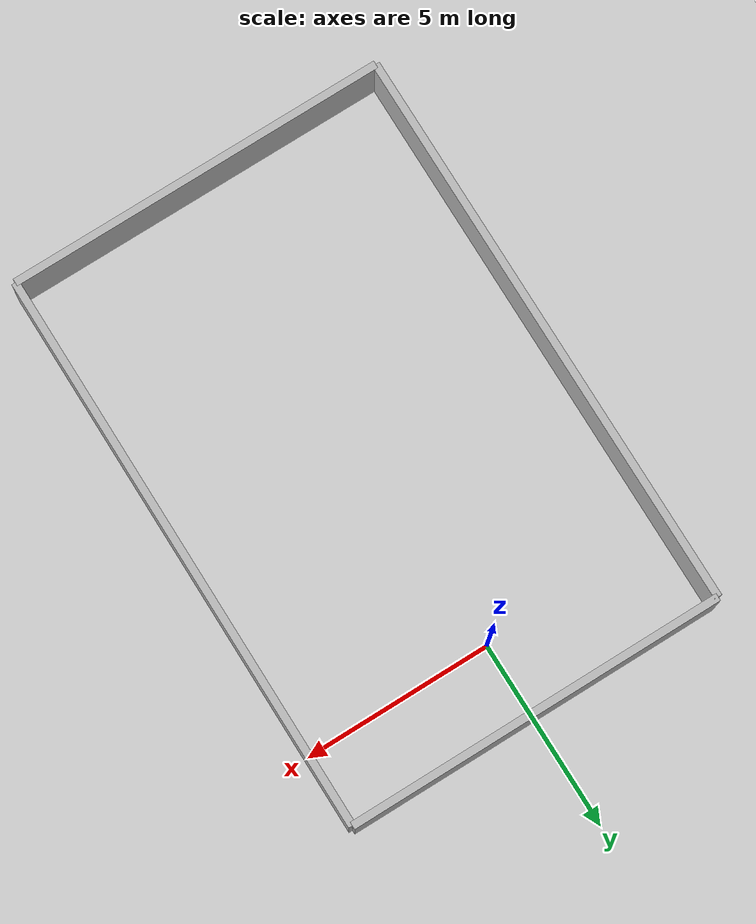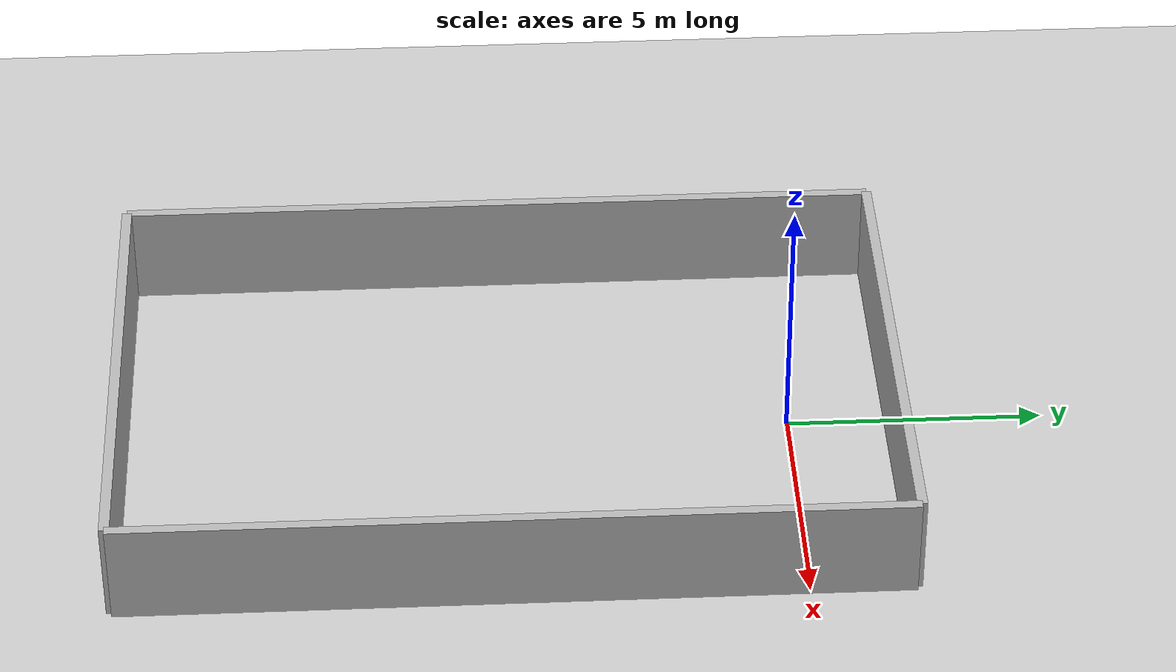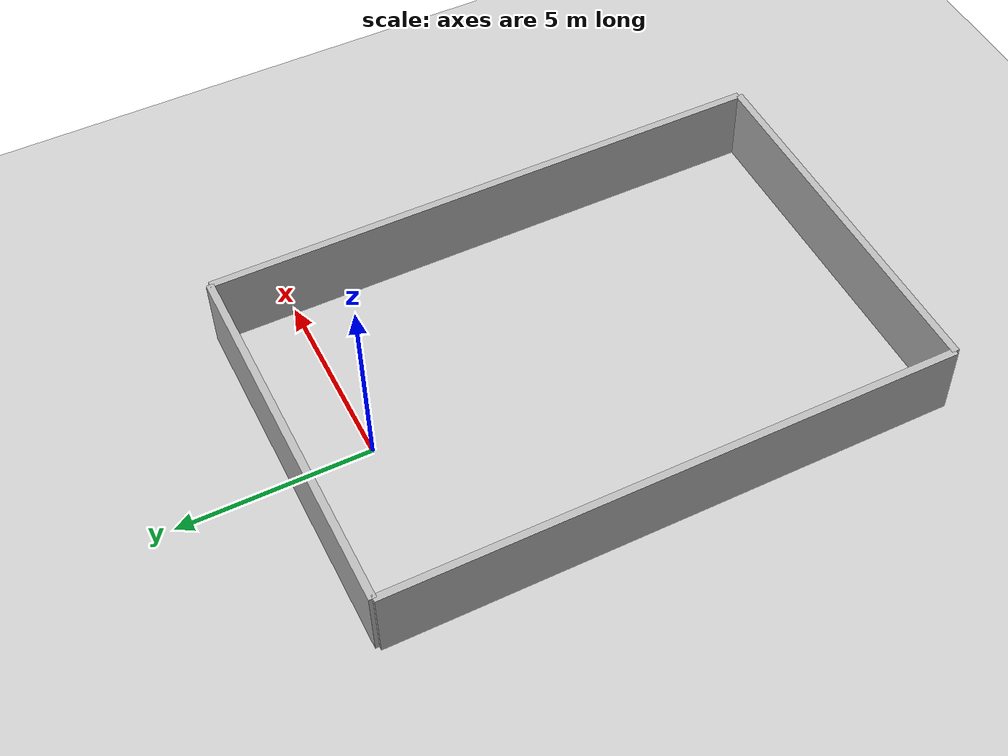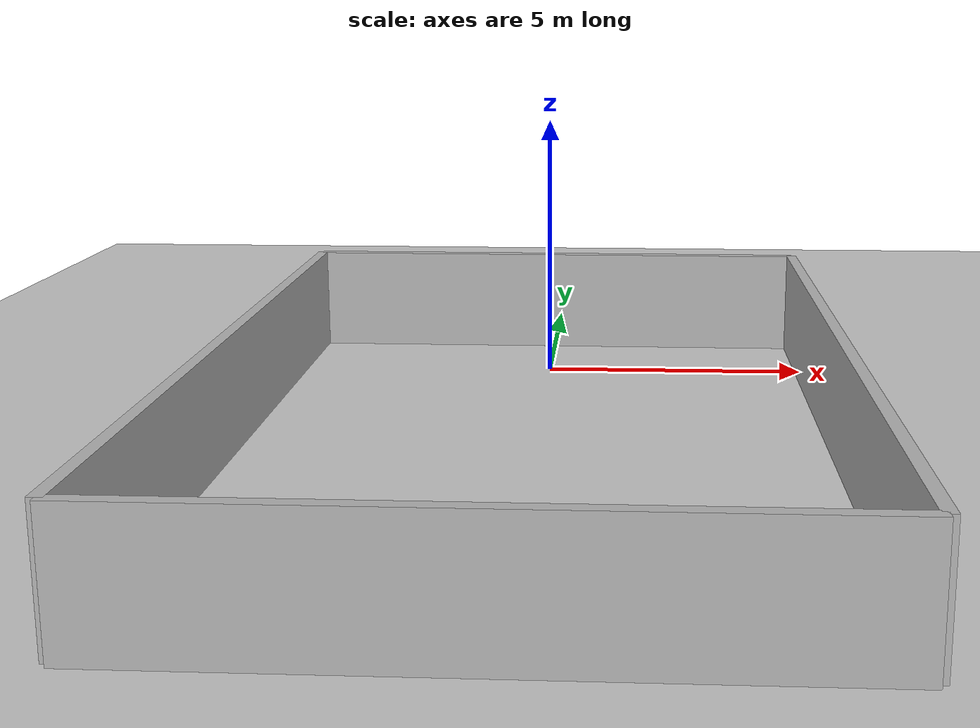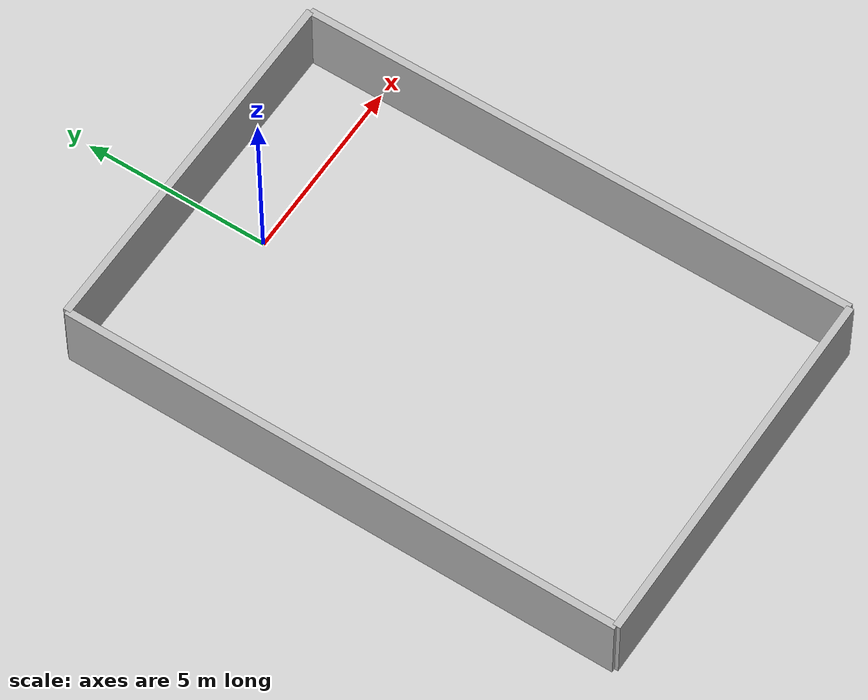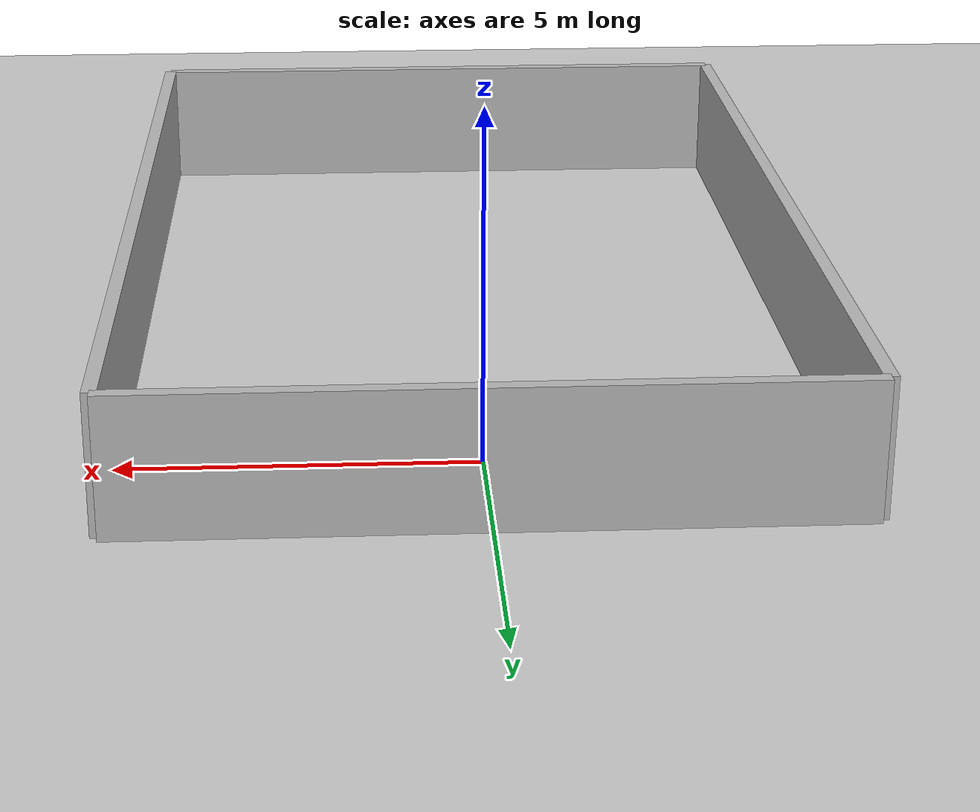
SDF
<?xml version="1.0" ?>
<sdf version='1.6'>
  <world name='default'>
    <plugin name="pal_gazebo_collisions" filename="libpal_gazebo_collisions.so"/>
    <plugin name="gazebo_ros_state" filename="libgazebo_ros_state.so"/>
    <physics name='default_physics' default='0' type='ode'>
      <ode>
        <solver>
          <type>quick</type>
          <iters>20</iters>
          <sor>1</sor>
          <use_dynamic_moi_rescaling>0</use_dynamic_moi_rescaling>
        </solver>
        <constraints>
          <cfm>0</cfm>
          <erp>0.2</erp>
          <contact_max_correcting_vel>100</contact_max_correcting_vel>
          <contact_surface_layer>0</contact_surface_layer>
        </constraints>
      </ode>
      <real_time_update_rate>1000</real_time_update_rate>
      <max_step_size>0.001</max_step_size>
      <real_time_factor>1</real_time_factor>
      <max_contacts>20</max_contacts>
    </physics>
    <light name='sun' type='directional'>
      <cast_shadows>0</cast_shadows>
      <pose>0 0 100 0 0 0</pose>
      <diffuse>0.8 0.8 0.8 1</diffuse>
      <specular>0.2 0.2 0.2 1</specular>
      <attenuation>
        <range>1000</range>
        <constant>1.0</constant>
        <linear>0.0</linear>
        <quadratic>0.0</quadratic>
      </attenuation>
      <direction>-0.5 0.1 -0.9</direction>
    </light>
    <model name='ground_plane'>
      <static>1</static>
      <link name='link'>
        <collision name='collision'>
          <geometry>
            <plane>
              <normal>0 0 1</normal>
              <size>100 100</size>
            </plane>
          </geometry>
          <surface>
            <friction>
              <ode>
                <mu>100</mu>
                <mu2>50</mu2>
              </ode>
              <torsional>
                <ode/>
              </torsional>
            </friction>
            <bounce/>
            <contact>
              <ode/>
            </contact>
          </surface>
          <max_contacts>10</max_contacts>
        </collision>
        <visual name='visual'>
          <cast_shadows>0</cast_shadows>
          <geometry>
            <plane>
              <normal>0 0 1</normal>
              <size>100 100</size>
            </plane>
          </geometry>
          <material>
            <script>
              <uri>file://media/materials/scripts/gazebo.material</uri>
              <name>Gazebo/Grey</name>
            </script>
          </material>
        </visual>
        <velocity_decay>
          <linear>0</linear>
          <angular>0</angular>
        </velocity_decay>
        <self_collide>0</self_collide>
        <kinematic>0</kinematic>
        <gravity>1</gravity>
        <enable_wind>0</enable_wind>
      </link>
    </model>
    <model name='wall_1_model'>
      <pose frame=''>0 -13 1 0 -0 0</pose>
      <static>1</static>
      <link name='wall_1_body'>
        <inertial>
          <mass>1</mass>
          <inertia>
            <ixx>1</ixx>
            <ixy>0</ixy>
            <ixz>0</ixz>
            <iyy>1</iyy>
            <iyz>0</iyz>
            <izz>1</izz>
          </inertia>
        </inertial>
        <collision name='collision'>
          <geometry>
            <box>
              <size>10 0.2 2</size>
            </box>
          </geometry>
          <max_contacts>10</max_contacts>
          <surface>
            <bounce/>
            <friction>
              <ode/>
              <torsional>
                <ode/>
              </torsional>
            </friction>
            <contact>
              <ode/>
            </contact>
          </surface>
        </collision>
        <visual name='visual'>
          <geometry>
            <box>
              <size>10 0.2 2</size>
            </box>
          </geometry>
        </visual>
        <velocity_decay>
          <linear>0</linear>
          <angular>0</angular>
        </velocity_decay>
        <self_collide>0</self_collide>
        <kinematic>0</kinematic>
        <gravity>1</gravity>
        <enable_wind>0</enable_wind>
      </link>
    </model>
    <model name='wall_2_model'>
      <pose frame=''>0 2 1 0 -0 0</pose>
      <static>1</static>
      <link name='wall_2_body'>
        <inertial>
          <mass>1</mass>
          <inertia>
            <ixx>1</ixx>
            <ixy>0</ixy>
            <ixz>0</ixz>
            <iyy>1</iyy>
            <iyz>0</iyz>
            <izz>1</izz>
          </inertia>
        </inertial>
        <collision name='collision'>
          <geometry>
            <box>
              <size>10 0.2 2</size>
            </box>
          </geometry>
          <max_contacts>10</max_contacts>
          <surface>
            <bounce/>
            <friction>
              <ode/>
              <torsional>
                <ode/>
              </torsional>
            </friction>
            <contact>
              <ode/>
            </contact>
          </surface>
        </collision>
        <visual name='visual'>
          <geometry>
            <box>
              <size>10 0.2 2</size>
            </box>
          </geometry>
        </visual>
        <velocity_decay>
          <linear>0</linear>
          <angular>0</angular>
        </velocity_decay>
        <self_collide>0</self_collide>
        <kinematic>0</kinematic>
        <gravity>1</gravity>
        <enable_wind>0</enable_wind>
      </link>
    </model>
    <model name='wall_3_model'>
      <pose frame=''>-5 -5.5 1 0 -0 0</pose>
      <static>1</static>
      <link name='wall_3_body'>
        <inertial>
          <mass>1</mass>
          <inertia>
            <ixx>1</ixx>
            <ixy>0</ixy>
            <ixz>0</ixz>
            <iyy>1</iyy>
            <iyz>0</iyz>
            <izz>1</izz>
          </inertia>
        </inertial>
        <collision name='collision'>
          <geometry>
            <box>
              <size>0.2 15 2</size>
            </box>
          </geometry>
          <max_contacts>10</max_contacts>
          <surface>
            <bounce/>
            <friction>
              <ode/>
              <torsional>
                <ode/>
              </torsional>
            </friction>
            <contact>
              <ode/>
            </contact>
          </surface>
        </collision>
        <visual name='visual'>
          <geometry>
            <box>
              <size>0.2 15 2</size>
            </box>
          </geometry>
        </visual>
        <velocity_decay>
          <linear>0</linear>
          <angular>0</angular>
        </velocity_decay>
        <self_collide>0</self_collide>
        <kinematic>0</kinematic>
        <gravity>1</gravity>
        <enable_wind>0</enable_wind>
      </link>
    </model>
    <model name='wall_4_model'>
      <pose frame=''>5 -5.5 1 0 -0 0</pose>
      <static>1</static>
      <link name='wall_4_body'>
        <inertial>
          <mass>1</mass>
          <inertia>
            <ixx>1</ixx>
            <ixy>0</ixy>
            <ixz>0</ixz>
            <iyy>1</iyy>
            <iyz>0</iyz>
            <izz>1</izz>
          </inertia>
        </inertial>
        <collision name='collision'>
          <geometry>
            <box>
              <size>0.2 15 2</size>
            </box>
          </geometry>
          <max_contacts>10</max_contacts>
          <surface>
            <bounce/>
            <friction>
              <ode/>
              <torsional>
                <ode/>
              </torsional>
            </friction>
            <contact>
              <ode/>
            </contact>
          </surface>
        </collision>
        <visual name='visual'>
          <geometry>
            <box>
              <size>0.2 15 2</size>
            </box>
          </geometry>
        </visual>
        <velocity_decay>
          <linear>0</linear>
          <angular>0</angular>
        </velocity_decay>
        <self_collide>0</self_collide>
        <kinematic>0</kinematic>
        <gravity>1</gravity>
        <enable_wind>0</enable_wind>
      </link>
    </model>
    <scene>
      <ambient>0.2 0.2 0.2 1</ambient>
      <background>0.7 0.7 0.7 1</background>
      <shadows>1</shadows>
    </scene>
    <gui fullscreen='0'>
      <camera name='user_camera'>
        <pose frame=''>3.82784 -12.4819 24.5765 0 1.32764 1.54819</pose>
        <view_controller>orbit</view_controller>
        <projection_type>perspective</projection_type>
      </camera>
    </gui>
    <gravity>0 0 -9.81</gravity>
    <magnetic_field>6e-06 2.3e-05 -4.2e-05</magnetic_field>
    <atmosphere type='adiabatic'/>
    <wind/>
    <spherical_coordinates>
      <surface_model>EARTH_WGS84</surface_model>
      <latitude_deg>0</latitude_deg>
      <longitude_deg>0</longitude_deg>
      <elevation>0</elevation>
      <heading_deg>0</heading_deg>
    </spherical_coordinates>
  </world>
</sdf>
